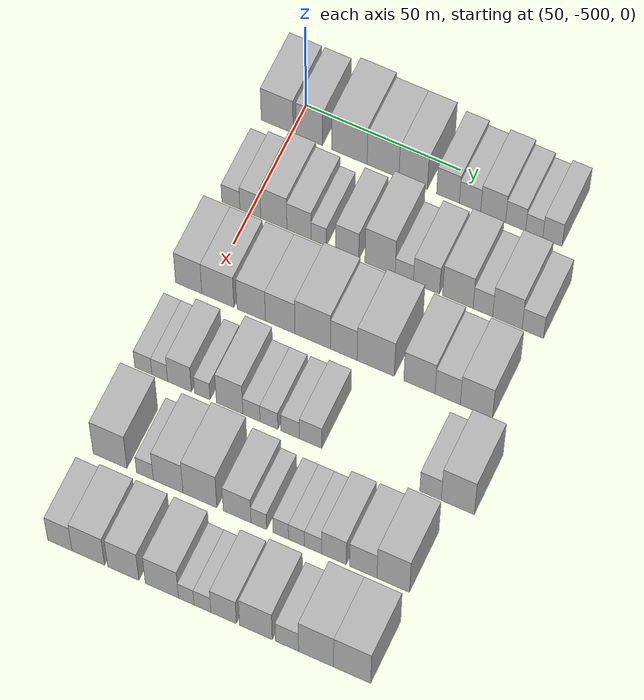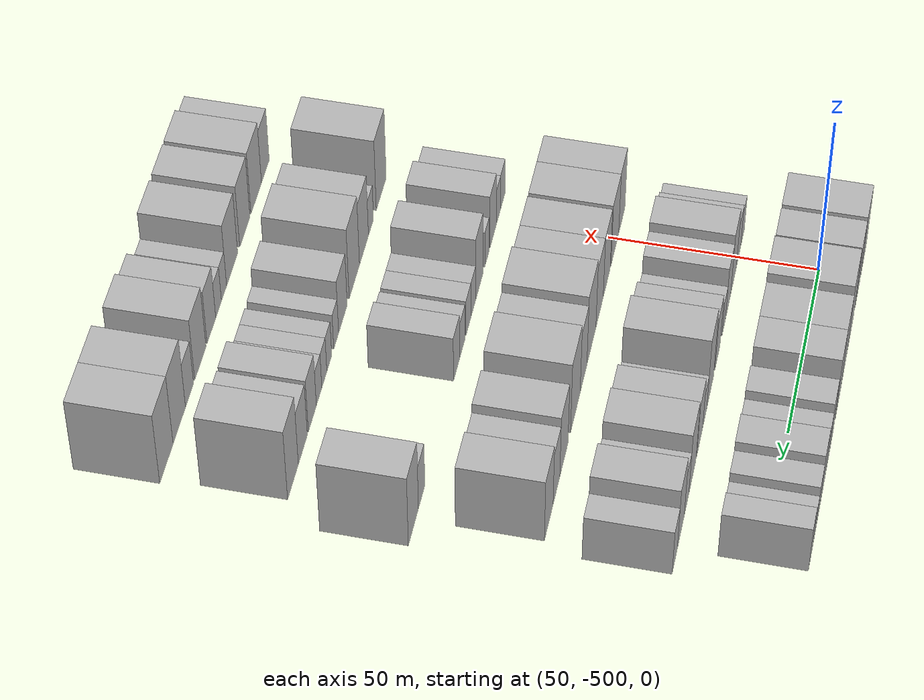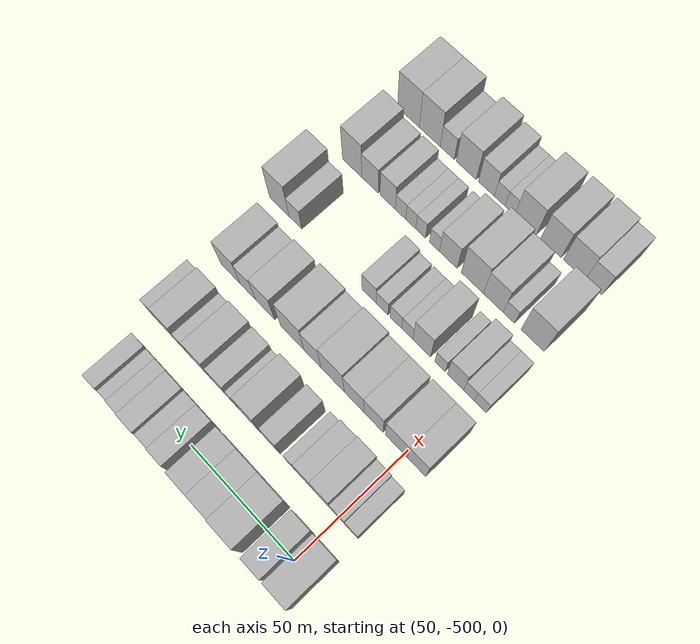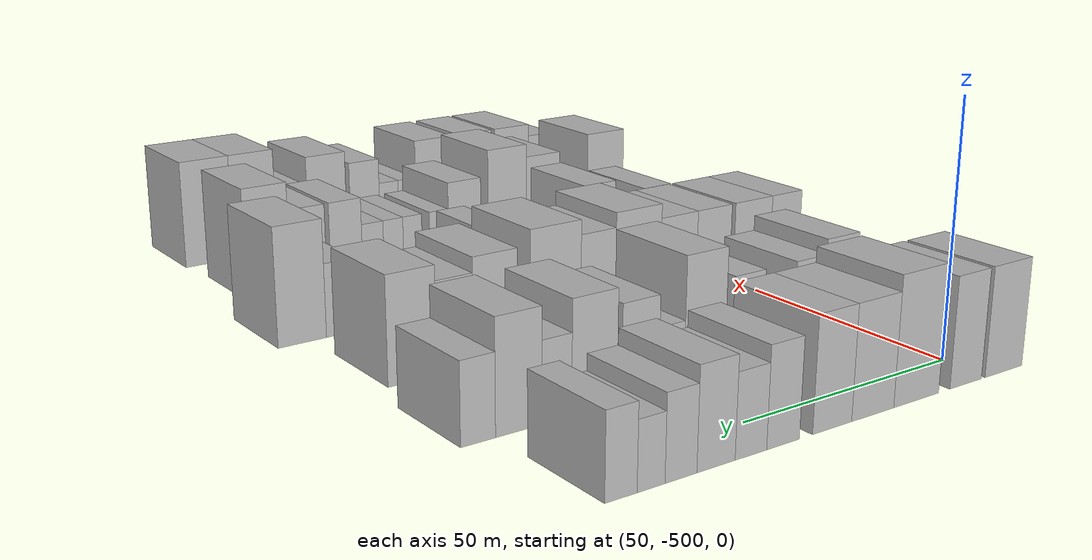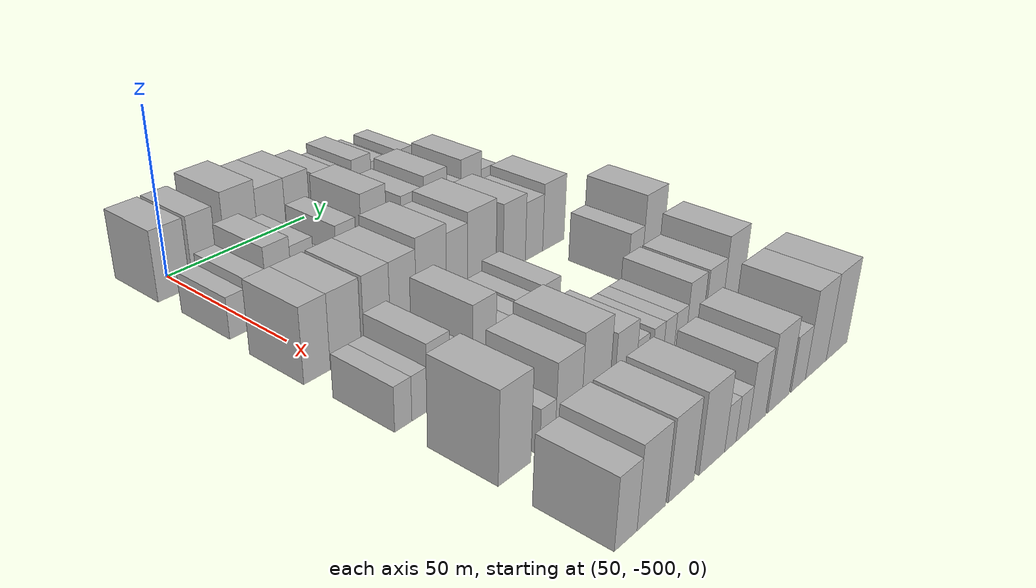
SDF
<sdf version="1.6">
 <world name="default">
  <model name="building_1">
   <static>1</static>
   <pose>50.0000 -504.7985 0 0.000000 0.000000 0.000000</pose>
   <link name="link">
    <pose>0 0 10.50 0 0 0</pose>
    <collision name="collision"><geometry><box><size>20.0000 10.4030 21.0000</size></box></geometry></collision>
    <visual name="visual">
     <cast_shadows>0</cast_shadows>
     <geometry><box><size>20.0000 10.4030 21.0000</size></box></geometry>
     <material>
      <script>
       <uri>model://HANNAS_wall/materials/scripts</uri>
       <uri>model://HANNAS_wall/materials/textures</uri>
       <name>vrc/HANNAS_wall</name>
      </script>
     </material>
    </visual>
   </link>
  </model>
  <model name="building_2">
   <static>1</static>
   <pose>50.0000 -494.3292 0 0.000000 0.000000 0.000000</pose>
   <link name="link">
    <pose>0 0 10.50 0 0 0</pose>
    <collision name="collision"><geometry><box><size>20.0000 8.5356 21.0000</size></box></geometry></collision>
    <visual name="visual">
     <cast_shadows>0</cast_shadows>
     <geometry><box><size>20.0000 8.5356 21.0000</size></box></geometry>
     <material>
      <script>
       <uri>model://HANNAS_wall/materials/scripts</uri>
       <uri>model://HANNAS_wall/materials/textures</uri>
       <name>vrc/HANNAS_wall</name>
      </script>
     </material>
    </visual>
   </link>
  </model>
  <model name="building_3">
   <static>1</static>
   <pose>50.0000 -481.3072 0 0.000000 0.000000 0.000000</pose>
   <link name="link">
    <pose>0 0 12.00 0 0 0</pose>
    <collision name="collision"><geometry><box><size>20.0000 11.5084 24.0000</size></box></geometry></collision>
    <visual name="visual">
     <cast_shadows>0</cast_shadows>
     <geometry><box><size>20.0000 11.5084 24.0000</size></box></geometry>
     <material>
      <script>
       <uri>model://HANNAS_wall/materials/scripts</uri>
       <uri>model://HANNAS_wall/materials/textures</uri>
       <name>vrc/HANNAS_wall</name>
      </script>
     </material>
    </visual>
   </link>
  </model>
  <model name="building_4">
   <static>1</static>
   <pose>50.0000 -470.4035 0 0.000000 0.000000 0.000000</pose>
   <link name="link">
    <pose>0 0 10.50 0 0 0</pose>
    <collision name="collision"><geometry><box><size>20.0000 10.2989 21.0000</size></box></geometry></collision>
    <visual name="visual">
     <cast_shadows>0</cast_shadows>
     <geometry><box><size>20.0000 10.2989 21.0000</size></box></geometry>
     <material>
      <script>
       <uri>model://HANNAS_wall/materials/scripts</uri>
       <uri>model://HANNAS_wall/materials/textures</uri>
       <name>vrc/HANNAS_wall</name>
      </script>
     </material>
    </visual>
   </link>
  </model>
  <model name="building_5">
   <static>1</static>
   <pose>50.0000 -460.6697 0 0.000000 0.000000 0.000000</pose>
   <link name="link">
    <pose>0 0 10.50 0 0 0</pose>
    <collision name="collision"><geometry><box><size>20.0000 9.1688 21.0000</size></box></geometry></collision>
    <visual name="visual">
     <cast_shadows>0</cast_shadows>
     <geometry><box><size>20.0000 9.1688 21.0000</size></box></geometry>
     <material>
      <script>
       <uri>model://HANNAS_wall/materials/scripts</uri>
       <uri>model://HANNAS_wall/materials/textures</uri>
       <name>vrc/HANNAS_wall</name>
      </script>
     </material>
    </visual>
   </link>
  </model>
  <model name="building_6">
   <static>1</static>
   <pose>50.0000 -449.4327 0 0.000000 0.000000 0.000000</pose>
   <link name="link">
    <pose>0 0 9.00 0 0 0</pose>
    <collision name="collision"><geometry><box><size>20.0000 7.3051 18.0000</size></box></geometry></collision>
    <visual name="visual">
     <cast_shadows>0</cast_shadows>
     <geometry><box><size>20.0000 7.3051 18.0000</size></box></geometry>
     <material>
      <script>
       <uri>model://HANNAS_wall/materials/scripts</uri>
       <uri>model://HANNAS_wall/materials/textures</uri>
       <name>vrc/HANNAS_wall</name>
      </script>
     </material>
    </visual>
   </link>
  </model>
  <model name="building_7">
   <static>1</static>
   <pose>50.0000 -442.3728 0 0.000000 0.000000 0.000000</pose>
   <link name="link">
    <pose>0 0 7.50 0 0 0</pose>
    <collision name="collision"><geometry><box><size>20.0000 6.8146 15.0000</size></box></geometry></collision>
    <visual name="visual">
     <cast_shadows>0</cast_shadows>
     <geometry><box><size>20.0000 6.8146 15.0000</size></box></geometry>
     <material>
      <script>
       <uri>model://HANNAS_wall/materials/scripts</uri>
       <uri>model://HANNAS_wall/materials/textures</uri>
       <name>vrc/HANNAS_wall</name>
      </script>
     </material>
    </visual>
   </link>
  </model>
  <model name="building_8">
   <static>1</static>
   <pose>50.0000 -434.9805 0 0.000000 0.000000 0.000000</pose>
   <link name="link">
    <pose>0 0 9.00 0 0 0</pose>
    <collision name="collision"><geometry><box><size>20.0000 7.9700 18.0000</size></box></geometry></collision>
    <visual name="visual">
     <cast_shadows>0</cast_shadows>
     <geometry><box><size>20.0000 7.9700 18.0000</size></box></geometry>
     <material>
      <script>
       <uri>model://HANNAS_wall/materials/scripts</uri>
       <uri>model://HANNAS_wall/materials/textures</uri>
       <name>vrc/HANNAS_wall</name>
      </script>
     </material>
    </visual>
   </link>
  </model>
  <model name="building_9">
   <static>1</static>
   <pose>50.0000 -427.7849 0 0.000000 0.000000 0.000000</pose>
   <link name="link">
    <pose>0 0 7.50 0 0 0</pose>
    <collision name="collision"><geometry><box><size>20.0000 6.4212 15.0000</size></box></geometry></collision>
    <visual name="visual">
     <cast_shadows>0</cast_shadows>
     <geometry><box><size>20.0000 6.4212 15.0000</size></box></geometry>
     <material>
      <script>
       <uri>model://HANNAS_wall/materials/scripts</uri>
       <uri>model://HANNAS_wall/materials/textures</uri>
       <name>vrc/HANNAS_wall</name>
      </script>
     </material>
    </visual>
   </link>
  </model>
  <model name="building_10">
   <static>1</static>
   <pose>50.0000 -421.8441 0 0.000000 0.000000 0.000000</pose>
   <link name="link">
    <pose>0 0 6.00 0 0 0</pose>
    <collision name="collision"><geometry><box><size>20.0000 5.4605 12.0000</size></box></geometry></collision>
    <visual name="visual">
     <cast_shadows>0</cast_shadows>
     <geometry><box><size>20.0000 5.4605 12.0000</size></box></geometry>
     <material>
      <script>
       <uri>model://HANNAS_wall/materials/scripts</uri>
       <uri>model://HANNAS_wall/materials/textures</uri>
       <name>vrc/HANNAS_wall</name>
      </script>
     </material>
    </visual>
   </link>
  </model>
  <model name="building_11">
   <static>1</static>
   <pose>50.0000 -416.0317 0 0.000000 0.000000 0.000000</pose>
   <link name="link">
    <pose>0 0 7.50 0 0 0</pose>
    <collision name="collision"><geometry><box><size>20.0000 6.1642 15.0000</size></box></geometry></collision>
    <visual name="visual">
     <cast_shadows>0</cast_shadows>
     <geometry><box><size>20.0000 6.1642 15.0000</size></box></geometry>
     <material>
      <script>
       <uri>model://HANNAS_wall/materials/scripts</uri>
       <uri>model://HANNAS_wall/materials/textures</uri>
       <name>vrc/HANNAS_wall</name>
      </script>
     </material>
    </visual>
   </link>
  </model>
  <model name="building_110">
   <static>1</static>
   <pose>79.0000 -506.0816 0 0.000000 0.000000 0.000000</pose>
   <link name="link">
    <pose>0 0 6.00 0 0 0</pose>
    <collision name="collision"><geometry><box><size>20.0000 5.8368 12.0000</size></box></geometry></collision>
    <visual name="visual">
     <cast_shadows>0</cast_shadows>
     <geometry><box><size>20.0000 5.8368 12.0000</size></box></geometry>
     <material>
      <script>
       <uri>model://HANNAS_wall/materials/scripts</uri>
       <uri>model://HANNAS_wall/materials/textures</uri>
       <name>vrc/HANNAS_wall</name>
      </script>
     </material>
    </visual>
   </link>
  </model>
  <model name="building_111">
   <static>1</static>
   <pose>79.0000 -499.7930 0 0.000000 0.000000 0.000000</pose>
   <link name="link">
    <pose>0 0 7.50 0 0 0</pose>
    <collision name="collision"><geometry><box><size>20.0000 6.7405 15.0000</size></box></geometry></collision>
    <visual name="visual">
     <cast_shadows>0</cast_shadows>
     <geometry><box><size>20.0000 6.7405 15.0000</size></box></geometry>
     <material>
      <script>
       <uri>model://HANNAS_wall/materials/scripts</uri>
       <uri>model://HANNAS_wall/materials/textures</uri>
       <name>vrc/HANNAS_wall</name>
      </script>
     </material>
    </visual>
   </link>
  </model>
  <model name="building_112">
   <static>1</static>
   <pose>79.0000 -492.1900 0 0.000000 0.000000 0.000000</pose>
   <link name="link">
    <pose>0 0 10.50 0 0 0</pose>
    <collision name="collision"><geometry><box><size>20.0000 8.4654 21.0000</size></box></geometry></collision>
    <visual name="visual">
     <cast_shadows>0</cast_shadows>
     <geometry><box><size>20.0000 8.4654 21.0000</size></box></geometry>
     <material>
      <script>
       <uri>model://HANNAS_wall/materials/scripts</uri>
       <uri>model://HANNAS_wall/materials/textures</uri>
       <name>vrc/HANNAS_wall</name>
      </script>
     </material>
    </visual>
   </link>
  </model>
  <model name="building_113">
   <static>1</static>
   <pose>79.0000 -484.0655 0 0.000000 0.000000 0.000000</pose>
   <link name="link">
    <pose>0 0 9.00 0 0 0</pose>
    <collision name="collision"><geometry><box><size>20.0000 7.7834 18.0000</size></box></geometry></collision>
    <visual name="visual">
     <cast_shadows>0</cast_shadows>
     <geometry><box><size>20.0000 7.7834 18.0000</size></box></geometry>
     <material>
      <script>
       <uri>model://HANNAS_wall/materials/scripts</uri>
       <uri>model://HANNAS_wall/materials/textures</uri>
       <name>vrc/HANNAS_wall</name>
      </script>
     </material>
    </visual>
   </link>
  </model>
  <model name="building_114">
   <static>1</static>
   <pose>79.0000 -477.6997 0 0.000000 0.000000 0.000000</pose>
   <link name="link">
    <pose>0 0 6.00 0 0 0</pose>
    <collision name="collision"><geometry><box><size>20.0000 4.9483 12.0000</size></box></geometry></collision>
    <visual name="visual">
     <cast_shadows>0</cast_shadows>
     <geometry><box><size>20.0000 4.9483 12.0000</size></box></geometry>
     <material>
      <script>
       <uri>model://HANNAS_wall/materials/scripts</uri>
       <uri>model://HANNAS_wall/materials/textures</uri>
       <name>vrc/HANNAS_wall</name>
      </script>
     </material>
    </visual>
   </link>
  </model>
  <model name="building_115">
   <static>1</static>
   <pose>79.0000 -468.5390 0 0.000000 0.000000 0.000000</pose>
   <link name="link">
    <pose>0 0 9.00 0 0 0</pose>
    <collision name="collision"><geometry><box><size>20.0000 7.3730 18.0000</size></box></geometry></collision>
    <visual name="visual">
     <cast_shadows>0</cast_shadows>
     <geometry><box><size>20.0000 7.3730 18.0000</size></box></geometry>
     <material>
      <script>
       <uri>model://HANNAS_wall/materials/scripts</uri>
       <uri>model://HANNAS_wall/materials/textures</uri>
       <name>vrc/HANNAS_wall</name>
      </script>
     </material>
    </visual>
   </link>
  </model>
  <model name="building_116">
   <static>1</static>
   <pose>79.0000 -458.0254 0 0.000000 0.000000 0.000000</pose>
   <link name="link">
    <pose>0 0 12.00 0 0 0</pose>
    <collision name="collision"><geometry><box><size>20.0000 9.6542 24.0000</size></box></geometry></collision>
    <visual name="visual">
     <cast_shadows>0</cast_shadows>
     <geometry><box><size>20.0000 9.6542 24.0000</size></box></geometry>
     <material>
      <script>
       <uri>model://HANNAS_wall/materials/scripts</uri>
       <uri>model://HANNAS_wall/materials/textures</uri>
       <name>vrc/HANNAS_wall</name>
      </script>
     </material>
    </visual>
   </link>
  </model>
  <model name="building_117">
   <static>1</static>
   <pose>79.0000 -450.2792 0 0.000000 0.000000 0.000000</pose>
   <link name="link">
    <pose>0 0 6.00 0 0 0</pose>
    <collision name="collision"><geometry><box><size>20.0000 5.8381 12.0000</size></box></geometry></collision>
    <visual name="visual">
     <cast_shadows>0</cast_shadows>
     <geometry><box><size>20.0000 5.8381 12.0000</size></box></geometry>
     <material>
      <script>
       <uri>model://HANNAS_wall/materials/scripts</uri>
       <uri>model://HANNAS_wall/materials/textures</uri>
       <name>vrc/HANNAS_wall</name>
      </script>
     </material>
    </visual>
   </link>
  </model>
  <model name="building_118">
   <static>1</static>
   <pose>79.0000 -443.2115 0 0.000000 0.000000 0.000000</pose>
   <link name="link">
    <pose>0 0 9.00 0 0 0</pose>
    <collision name="collision"><geometry><box><size>20.0000 8.2974 18.0000</size></box></geometry></collision>
    <visual name="visual">
     <cast_shadows>0</cast_shadows>
     <geometry><box><size>20.0000 8.2974 18.0000</size></box></geometry>
     <material>
      <script>
       <uri>model://HANNAS_wall/materials/scripts</uri>
       <uri>model://HANNAS_wall/materials/textures</uri>
       <name>vrc/HANNAS_wall</name>
      </script>
     </material>
    </visual>
   </link>
  </model>
  <model name="building_119">
   <static>1</static>
   <pose>79.0000 -433.2069 0 0.000000 0.000000 0.000000</pose>
   <link name="link">
    <pose>0 0 10.50 0 0 0</pose>
    <collision name="collision"><geometry><box><size>20.0000 9.7117 21.0000</size></box></geometry></collision>
    <visual name="visual">
     <cast_shadows>0</cast_shadows>
     <geometry><box><size>20.0000 9.7117 21.0000</size></box></geometry>
     <material>
      <script>
       <uri>model://HANNAS_wall/materials/scripts</uri>
       <uri>model://HANNAS_wall/materials/textures</uri>
       <name>vrc/HANNAS_wall</name>
      </script>
     </material>
    </visual>
   </link>
  </model>
  <model name="building_120">
   <static>1</static>
   <pose>79.0000 -425.2520 0 0.000000 0.000000 0.000000</pose>
   <link name="link">
    <pose>0 0 7.50 0 0 0</pose>
    <collision name="collision"><geometry><box><size>20.0000 6.1982 15.0000</size></box></geometry></collision>
    <visual name="visual">
     <cast_shadows>0</cast_shadows>
     <geometry><box><size>20.0000 6.1982 15.0000</size></box></geometry>
     <material>
      <script>
       <uri>model://HANNAS_wall/materials/scripts</uri>
       <uri>model://HANNAS_wall/materials/textures</uri>
       <name>vrc/HANNAS_wall</name>
      </script>
     </material>
    </visual>
   </link>
  </model>
  <model name="building_121">
   <static>1</static>
   <pose>79.0000 -417.5012 0 0.000000 0.000000 0.000000</pose>
   <link name="link">
    <pose>0 0 10.50 0 0 0</pose>
    <collision name="collision"><geometry><box><size>20.0000 9.3034 21.0000</size></box></geometry></collision>
    <visual name="visual">
     <cast_shadows>0</cast_shadows>
     <geometry><box><size>20.0000 9.3034 21.0000</size></box></geometry>
     <material>
      <script>
       <uri>model://HANNAS_wall/materials/scripts</uri>
       <uri>model://HANNAS_wall/materials/textures</uri>
       <name>vrc/HANNAS_wall</name>
      </script>
     </material>
    </visual>
   </link>
  </model>
  <model name="building_122">
   <static>1</static>
   <pose>79.0000 -409.4625 0 0.000000 0.000000 0.000000</pose>
   <link name="link">
    <pose>0 0 7.50 0 0 0</pose>
    <collision name="collision"><geometry><box><size>20.0000 6.7739 15.0000</size></box></geometry></collision>
    <visual name="visual">
     <cast_shadows>0</cast_shadows>
     <geometry><box><size>20.0000 6.7739 15.0000</size></box></geometry>
     <material>
      <script>
       <uri>model://HANNAS_wall/materials/scripts</uri>
       <uri>model://HANNAS_wall/materials/textures</uri>
       <name>vrc/HANNAS_wall</name>
      </script>
     </material>
    </visual>
   </link>
  </model>
  <model name="building_226">
   <static>1</static>
   <pose>108.0000 -505.7720 0 0.000000 0.000000 0.000000</pose>
   <link name="link">
    <pose>0 0 10.50 0 0 0</pose>
    <collision name="collision"><geometry><box><size>20.0000 8.4561 21.0000</size></box></geometry></collision>
    <visual name="visual">
     <cast_shadows>0</cast_shadows>
     <geometry><box><size>20.0000 8.4561 21.0000</size></box></geometry>
     <material>
      <script>
       <uri>model://HANNAS_wall/materials/scripts</uri>
       <uri>model://HANNAS_wall/materials/textures</uri>
       <name>vrc/HANNAS_wall</name>
      </script>
     </material>
    </visual>
   </link>
  </model>
  <model name="building_227">
   <static>1</static>
   <pose>108.0000 -496.3972 0 0.000000 0.000000 0.000000</pose>
   <link name="link">
    <pose>0 0 10.50 0 0 0</pose>
    <collision name="collision"><geometry><box><size>20.0000 10.2934 21.0000</size></box></geometry></collision>
    <visual name="visual">
     <cast_shadows>0</cast_shadows>
     <geometry><box><size>20.0000 10.2934 21.0000</size></box></geometry>
     <material>
      <script>
       <uri>model://HANNAS_wall/materials/scripts</uri>
       <uri>model://HANNAS_wall/materials/textures</uri>
       <name>vrc/HANNAS_wall</name>
      </script>
     </material>
    </visual>
   </link>
  </model>
  <model name="building_228">
   <static>1</static>
   <pose>108.0000 -485.7003 0 0.000000 0.000000 0.000000</pose>
   <link name="link">
    <pose>0 0 10.50 0 0 0</pose>
    <collision name="collision"><geometry><box><size>20.0000 9.1005 21.0000</size></box></geometry></collision>
    <visual name="visual">
     <cast_shadows>0</cast_shadows>
     <geometry><box><size>20.0000 9.1005 21.0000</size></box></geometry>
     <material>
      <script>
       <uri>model://HANNAS_wall/materials/scripts</uri>
       <uri>model://HANNAS_wall/materials/textures</uri>
       <name>vrc/HANNAS_wall</name>
      </script>
     </material>
    </visual>
   </link>
  </model>
  <model name="building_229">
   <static>1</static>
   <pose>108.0000 -476.4240 0 0.000000 0.000000 0.000000</pose>
   <link name="link">
    <pose>0 0 10.50 0 0 0</pose>
    <collision name="collision"><geometry><box><size>20.0000 9.4521 21.0000</size></box></geometry></collision>
    <visual name="visual">
     <cast_shadows>0</cast_shadows>
     <geometry><box><size>20.0000 9.4521 21.0000</size></box></geometry>
     <material>
      <script>
       <uri>model://HANNAS_wall/materials/scripts</uri>
       <uri>model://HANNAS_wall/materials/textures</uri>
       <name>vrc/HANNAS_wall</name>
      </script>
     </material>
    </visual>
   </link>
  </model>
  <model name="building_230">
   <static>1</static>
   <pose>108.0000 -466.0149 0 0.000000 0.000000 0.000000</pose>
   <link name="link">
    <pose>0 0 12.00 0 0 0</pose>
    <collision name="collision"><geometry><box><size>20.0000 11.3661 24.0000</size></box></geometry></collision>
    <visual name="visual">
     <cast_shadows>0</cast_shadows>
     <geometry><box><size>20.0000 11.3661 24.0000</size></box></geometry>
     <material>
      <script>
       <uri>model://HANNAS_wall/materials/scripts</uri>
       <uri>model://HANNAS_wall/materials/textures</uri>
       <name>vrc/HANNAS_wall</name>
      </script>
     </material>
    </visual>
   </link>
  </model>
  <model name="building_231">
   <static>1</static>
   <pose>108.0000 -456.1238 0 0.000000 0.000000 0.000000</pose>
   <link name="link">
    <pose>0 0 10.50 0 0 0</pose>
    <collision name="collision"><geometry><box><size>20.0000 8.4161 21.0000</size></box></geometry></collision>
    <visual name="visual">
     <cast_shadows>0</cast_shadows>
     <geometry><box><size>20.0000 8.4161 21.0000</size></box></geometry>
     <material>
      <script>
       <uri>model://HANNAS_wall/materials/scripts</uri>
       <uri>model://HANNAS_wall/materials/textures</uri>
       <name>vrc/HANNAS_wall</name>
      </script>
     </material>
    </visual>
   </link>
  </model>
  <model name="building_232">
   <static>1</static>
   <pose>108.0000 -446.0298 0 0.000000 0.000000 0.000000</pose>
   <link name="link">
    <pose>0 0 12.00 0 0 0</pose>
    <collision name="collision"><geometry><box><size>20.0000 11.7721 24.0000</size></box></geometry></collision>
    <visual name="visual">
     <cast_shadows>0</cast_shadows>
     <geometry><box><size>20.0000 11.7721 24.0000</size></box></geometry>
     <material>
      <script>
       <uri>model://HANNAS_wall/materials/scripts</uri>
       <uri>model://HANNAS_wall/materials/textures</uri>
       <name>vrc/HANNAS_wall</name>
      </script>
     </material>
    </visual>
   </link>
  </model>
  <model name="building_233">
   <static>1</static>
   <pose>108.0000 -432.2188 0 0.000000 0.000000 0.000000</pose>
   <link name="link">
    <pose>0 0 10.50 0 0 0</pose>
    <collision name="collision"><geometry><box><size>20.0000 9.8498 21.0000</size></box></geometry></collision>
    <visual name="visual">
     <cast_shadows>0</cast_shadows>
     <geometry><box><size>20.0000 9.8498 21.0000</size></box></geometry>
     <material>
      <script>
       <uri>model://HANNAS_wall/materials/scripts</uri>
       <uri>model://HANNAS_wall/materials/textures</uri>
       <name>vrc/HANNAS_wall</name>
      </script>
     </material>
    </visual>
   </link>
  </model>
  <model name="building_234">
   <static>1</static>
   <pose>108.0000 -423.3215 0 0.000000 0.000000 0.000000</pose>
   <link name="link">
    <pose>0 0 9.00 0 0 0</pose>
    <collision name="collision"><geometry><box><size>20.0000 7.9449 18.0000</size></box></geometry></collision>
    <visual name="visual">
     <cast_shadows>0</cast_shadows>
     <geometry><box><size>20.0000 7.9449 18.0000</size></box></geometry>
     <material>
      <script>
       <uri>model://HANNAS_wall/materials/scripts</uri>
       <uri>model://HANNAS_wall/materials/textures</uri>
       <name>vrc/HANNAS_wall</name>
      </script>
     </material>
    </visual>
   </link>
  </model>
  <model name="building_235">
   <static>1</static>
   <pose>108.0000 -414.3053 0 0.000000 0.000000 0.000000</pose>
   <link name="link">
    <pose>0 0 10.50 0 0 0</pose>
    <collision name="collision"><geometry><box><size>20.0000 10.0875 21.0000</size></box></geometry></collision>
    <visual name="visual">
     <cast_shadows>0</cast_shadows>
     <geometry><box><size>20.0000 10.0875 21.0000</size></box></geometry>
     <material>
      <script>
       <uri>model://HANNAS_wall/materials/scripts</uri>
       <uri>model://HANNAS_wall/materials/textures</uri>
       <name>vrc/HANNAS_wall</name>
      </script>
     </material>
    </visual>
   </link>
  </model>
  <model name="building_336">
   <static>1</static>
   <pose>137.0000 -506.2590 0 0.000000 0.000000 0.000000</pose>
   <link name="link">
    <pose>0 0 6.00 0 0 0</pose>
    <collision name="collision"><geometry><box><size>20.0000 5.4819 12.0000</size></box></geometry></collision>
    <visual name="visual">
     <cast_shadows>0</cast_shadows>
     <geometry><box><size>20.0000 5.4819 12.0000</size></box></geometry>
     <material>
      <script>
       <uri>model://HANNAS_wall/materials/scripts</uri>
       <uri>model://HANNAS_wall/materials/textures</uri>
       <name>vrc/HANNAS_wall</name>
      </script>
     </material>
    </visual>
   </link>
  </model>
  <model name="building_337">
   <static>1</static>
   <pose>137.0000 -501.0109 0 0.000000 0.000000 0.000000</pose>
   <link name="link">
    <pose>0 0 6.00 0 0 0</pose>
    <collision name="collision"><geometry><box><size>20.0000 5.0144 12.0000</size></box></geometry></collision>
    <visual name="visual">
     <cast_shadows>0</cast_shadows>
     <geometry><box><size>20.0000 5.0144 12.0000</size></box></geometry>
     <material>
      <script>
       <uri>model://HANNAS_wall/materials/scripts</uri>
       <uri>model://HANNAS_wall/materials/textures</uri>
       <name>vrc/HANNAS_wall</name>
      </script>
     </material>
    </visual>
   </link>
  </model>
  <model name="building_338">
   <static>1</static>
   <pose>137.0000 -494.6930 0 0.000000 0.000000 0.000000</pose>
   <link name="link">
    <pose>0 0 9.00 0 0 0</pose>
    <collision name="collision"><geometry><box><size>20.0000 7.6212 18.0000</size></box></geometry></collision>
    <visual name="visual">
     <cast_shadows>0</cast_shadows>
     <geometry><box><size>20.0000 7.6212 18.0000</size></box></geometry>
     <material>
      <script>
       <uri>model://HANNAS_wall/materials/scripts</uri>
       <uri>model://HANNAS_wall/materials/textures</uri>
       <name>vrc/HANNAS_wall</name>
      </script>
     </material>
    </visual>
   </link>
  </model>
  <model name="building_339">
   <static>1</static>
   <pose>137.0000 -487.4168 0 0.000000 0.000000 0.000000</pose>
   <link name="link">
    <pose>0 0 6.00 0 0 0</pose>
    <collision name="collision"><geometry><box><size>20.0000 4.9313 12.0000</size></box></geometry></collision>
    <visual name="visual">
     <cast_shadows>0</cast_shadows>
     <geometry><box><size>20.0000 4.9313 12.0000</size></box></geometry>
     <material>
      <script>
       <uri>model://HANNAS_wall/materials/scripts</uri>
       <uri>model://HANNAS_wall/materials/textures</uri>
       <name>vrc/HANNAS_wall</name>
      </script>
     </material>
    </visual>
   </link>
  </model>
  <model name="building_340">
   <static>1</static>
   <pose>137.0000 -478.7435 0 0.000000 0.000000 0.000000</pose>
   <link name="link">
    <pose>0 0 10.50 0 0 0</pose>
    <collision name="collision"><geometry><box><size>20.0000 8.4153 21.0000</size></box></geometry></collision>
    <visual name="visual">
     <cast_shadows>0</cast_shadows>
     <geometry><box><size>20.0000 8.4153 21.0000</size></box></geometry>
     <material>
      <script>
       <uri>model://HANNAS_wall/materials/scripts</uri>
       <uri>model://HANNAS_wall/materials/textures</uri>
       <name>vrc/HANNAS_wall</name>
      </script>
     </material>
    </visual>
   </link>
  </model>
  <model name="building_341">
   <static>1</static>
   <pose>137.0000 -471.8167 0 0.000000 0.000000 0.000000</pose>
   <link name="link">
    <pose>0 0 6.00 0 0 0</pose>
    <collision name="collision"><geometry><box><size>20.0000 5.4383 12.0000</size></box></geometry></collision>
    <visual name="visual">
     <cast_shadows>0</cast_shadows>
     <geometry><box><size>20.0000 5.4383 12.0000</size></box></geometry>
     <material>
      <script>
       <uri>model://HANNAS_wall/materials/scripts</uri>
       <uri>model://HANNAS_wall/materials/textures</uri>
       <name>vrc/HANNAS_wall</name>
      </script>
     </material>
    </visual>
   </link>
  </model>
  <model name="building_342">
   <static>1</static>
   <pose>137.0000 -466.2782 0 0.000000 0.000000 0.000000</pose>
   <link name="link">
    <pose>0 0 6.00 0 0 0</pose>
    <collision name="collision"><geometry><box><size>20.0000 5.6386 12.0000</size></box></geometry></collision>
    <visual name="visual">
     <cast_shadows>0</cast_shadows>
     <geometry><box><size>20.0000 5.6386 12.0000</size></box></geometry>
     <material>
      <script>
       <uri>model://HANNAS_wall/materials/scripts</uri>
       <uri>model://HANNAS_wall/materials/textures</uri>
       <name>vrc/HANNAS_wall</name>
      </script>
     </material>
    </visual>
   </link>
  </model>
  <model name="building_343">
   <static>1</static>
   <pose>137.0000 -459.5559 0 0.000000 0.000000 0.000000</pose>
   <link name="link">
    <pose>0 0 6.00 0 0 0</pose>
    <collision name="collision"><geometry><box><size>20.0000 5.8059 12.0000</size></box></geometry></collision>
    <visual name="visual">
     <cast_shadows>0</cast_shadows>
     <geometry><box><size>20.0000 5.8059 12.0000</size></box></geometry>
     <material>
      <script>
       <uri>model://HANNAS_wall/materials/scripts</uri>
       <uri>model://HANNAS_wall/materials/textures</uri>
       <name>vrc/HANNAS_wall</name>
      </script>
     </material>
    </visual>
   </link>
  </model>
  <model name="building_344">
   <static>1</static>
   <pose>137.0000 -453.1309 0 0.000000 0.000000 0.000000</pose>
   <link name="link">
    <pose>0 0 7.50 0 0 0</pose>
    <collision name="collision"><geometry><box><size>20.0000 7.0442 15.0000</size></box></geometry></collision>
    <visual name="visual">
     <cast_shadows>0</cast_shadows>
     <geometry><box><size>20.0000 7.0442 15.0000</size></box></geometry>
     <material>
      <script>
       <uri>model://HANNAS_wall/materials/scripts</uri>
       <uri>model://HANNAS_wall/materials/textures</uri>
       <name>vrc/HANNAS_wall</name>
      </script>
     </material>
    </visual>
   </link>
  </model>
  <model name="building_345">
   <static>1</static>
   <pose>137.0000 -415.5318 0 0.000000 0.000000 0.000000</pose>
   <link name="link">
    <pose>0 0 7.50 0 0 0</pose>
    <collision name="collision"><geometry><box><size>20.0000 6.7180 15.0000</size></box></geometry></collision>
    <visual name="visual">
     <cast_shadows>0</cast_shadows>
     <geometry><box><size>20.0000 6.7180 15.0000</size></box></geometry>
     <material>
      <script>
       <uri>model://HANNAS_wall/materials/scripts</uri>
       <uri>model://HANNAS_wall/materials/textures</uri>
       <name>vrc/HANNAS_wall</name>
      </script>
     </material>
    </visual>
   </link>
  </model>
  <model name="building_346">
   <static>1</static>
   <pose>137.0000 -407.0289 0 0.000000 0.000000 0.000000</pose>
   <link name="link">
    <pose>0 0 12.00 0 0 0</pose>
    <collision name="collision"><geometry><box><size>20.0000 10.2879 24.0000</size></box></geometry></collision>
    <visual name="visual">
     <cast_shadows>0</cast_shadows>
     <geometry><box><size>20.0000 10.2879 24.0000</size></box></geometry>
     <material>
      <script>
       <uri>model://HANNAS_wall/materials/scripts</uri>
       <uri>model://HANNAS_wall/materials/textures</uri>
       <name>vrc/HANNAS_wall</name>
      </script>
     </material>
    </visual>
   </link>
  </model>
  <model name="building_443">
   <static>1</static>
   <pose>166.0000 -502.6297 0 0.000000 0.000000 0.000000</pose>
   <link name="link">
    <pose>0 0 12.00 0 0 0</pose>
    <collision name="collision"><geometry><box><size>20.0000 10.7406 24.0000</size></box></geometry></collision>
    <visual name="visual">
     <cast_shadows>0</cast_shadows>
     <geometry><box><size>20.0000 10.7406 24.0000</size></box></geometry>
     <material>
      <script>
       <uri>model://HANNAS_wall/materials/scripts</uri>
       <uri>model://HANNAS_wall/materials/textures</uri>
       <name>vrc/HANNAS_wall</name>
      </script>
     </material>
    </visual>
   </link>
  </model>
  <model name="building_444">
   <static>1</static>
   <pose>166.0000 -491.6010 0 0.000000 0.000000 0.000000</pose>
   <link name="link">
    <pose>0 0 6.00 0 0 0</pose>
    <collision name="collision"><geometry><box><size>20.0000 5.3168 12.0000</size></box></geometry></collision>
    <visual name="visual">
     <cast_shadows>0</cast_shadows>
     <geometry><box><size>20.0000 5.3168 12.0000</size></box></geometry>
     <material>
      <script>
       <uri>model://HANNAS_wall/materials/scripts</uri>
       <uri>model://HANNAS_wall/materials/textures</uri>
       <name>vrc/HANNAS_wall</name>
      </script>
     </material>
    </visual>
   </link>
  </model>
  <model name="building_445">
   <static>1</static>
   <pose>166.0000 -484.2429 0 0.000000 0.000000 0.000000</pose>
   <link name="link">
    <pose>0 0 10.50 0 0 0</pose>
    <collision name="collision"><geometry><box><size>20.0000 9.3994 21.0000</size></box></geometry></collision>
    <visual name="visual">
     <cast_shadows>0</cast_shadows>
     <geometry><box><size>20.0000 9.3994 21.0000</size></box></geometry>
     <material>
      <script>
       <uri>model://HANNAS_wall/materials/scripts</uri>
       <uri>model://HANNAS_wall/materials/textures</uri>
       <name>vrc/HANNAS_wall</name>
      </script>
     </material>
    </visual>
   </link>
  </model>
  <model name="building_446">
   <static>1</static>
   <pose>166.0000 -474.2143 0 0.000000 0.000000 0.000000</pose>
   <link name="link">
    <pose>0 0 12.00 0 0 0</pose>
    <collision name="collision"><geometry><box><size>20.0000 10.6578 24.0000</size></box></geometry></collision>
    <visual name="visual">
     <cast_shadows>0</cast_shadows>
     <geometry><box><size>20.0000 10.6578 24.0000</size></box></geometry>
     <material>
      <script>
       <uri>model://HANNAS_wall/materials/scripts</uri>
       <uri>model://HANNAS_wall/materials/textures</uri>
       <name>vrc/HANNAS_wall</name>
      </script>
     </material>
    </visual>
   </link>
  </model>
  <model name="building_447">
   <static>1</static>
   <pose>166.0000 -462.5323 0 0.000000 0.000000 0.000000</pose>
   <link name="link">
    <pose>0 0 9.00 0 0 0</pose>
    <collision name="collision"><geometry><box><size>20.0000 8.7061 18.0000</size></box></geometry></collision>
    <visual name="visual">
     <cast_shadows>0</cast_shadows>
     <geometry><box><size>20.0000 8.7061 18.0000</size></box></geometry>
     <material>
      <script>
       <uri>model://HANNAS_wall/materials/scripts</uri>
       <uri>model://HANNAS_wall/materials/textures</uri>
       <name>vrc/HANNAS_wall</name>
      </script>
     </material>
    </visual>
   </link>
  </model>
  <model name="building_448">
   <static>1</static>
   <pose>166.0000 -455.7201 0 0.000000 0.000000 0.000000</pose>
   <link name="link">
    <pose>0 0 6.00 0 0 0</pose>
    <collision name="collision"><geometry><box><size>20.0000 4.9183 12.0000</size></box></geometry></collision>
    <visual name="visual">
     <cast_shadows>0</cast_shadows>
     <geometry><box><size>20.0000 4.9183 12.0000</size></box></geometry>
     <material>
      <script>
       <uri>model://HANNAS_wall/materials/scripts</uri>
       <uri>model://HANNAS_wall/materials/textures</uri>
       <name>vrc/HANNAS_wall</name>
      </script>
     </material>
    </visual>
   </link>
  </model>
  <model name="building_449">
   <static>1</static>
   <pose>166.0000 -448.8503 0 0.000000 0.000000 0.000000</pose>
   <link name="link">
    <pose>0 0 6.00 0 0 0</pose>
    <collision name="collision"><geometry><box><size>20.0000 4.8213 12.0000</size></box></geometry></collision>
    <visual name="visual">
     <cast_shadows>0</cast_shadows>
     <geometry><box><size>20.0000 4.8213 12.0000</size></box></geometry>
     <material>
      <script>
       <uri>model://HANNAS_wall/materials/scripts</uri>
       <uri>model://HANNAS_wall/materials/textures</uri>
       <name>vrc/HANNAS_wall</name>
      </script>
     </material>
    </visual>
   </link>
  </model>
  <model name="building_450">
   <static>1</static>
   <pose>166.0000 -443.9521 0 0.000000 0.000000 0.000000</pose>
   <link name="link">
    <pose>0 0 6.00 0 0 0</pose>
    <collision name="collision"><geometry><box><size>20.0000 4.9752 12.0000</size></box></geometry></collision>
    <visual name="visual">
     <cast_shadows>0</cast_shadows>
     <geometry><box><size>20.0000 4.9752 12.0000</size></box></geometry>
     <material>
      <script>
       <uri>model://HANNAS_wall/materials/scripts</uri>
       <uri>model://HANNAS_wall/materials/textures</uri>
       <name>vrc/HANNAS_wall</name>
      </script>
     </material>
    </visual>
   </link>
  </model>
  <model name="building_451">
   <static>1</static>
   <pose>166.0000 -438.8131 0 0.000000 0.000000 0.000000</pose>
   <link name="link">
    <pose>0 0 6.00 0 0 0</pose>
    <collision name="collision"><geometry><box><size>20.0000 5.3027 12.0000</size></box></geometry></collision>
    <visual name="visual">
     <cast_shadows>0</cast_shadows>
     <geometry><box><size>20.0000 5.3027 12.0000</size></box></geometry>
     <material>
      <script>
       <uri>model://HANNAS_wall/materials/scripts</uri>
       <uri>model://HANNAS_wall/materials/textures</uri>
       <name>vrc/HANNAS_wall</name>
      </script>
     </material>
    </visual>
   </link>
  </model>
  <model name="building_452">
   <static>1</static>
   <pose>166.0000 -432.2993 0 0.000000 0.000000 0.000000</pose>
   <link name="link">
    <pose>0 0 9.00 0 0 0</pose>
    <collision name="collision"><geometry><box><size>20.0000 7.7249 18.0000</size></box></geometry></collision>
    <visual name="visual">
     <cast_shadows>0</cast_shadows>
     <geometry><box><size>20.0000 7.7249 18.0000</size></box></geometry>
     <material>
      <script>
       <uri>model://HANNAS_wall/materials/scripts</uri>
       <uri>model://HANNAS_wall/materials/textures</uri>
       <name>vrc/HANNAS_wall</name>
      </script>
     </material>
    </visual>
   </link>
  </model>
  <model name="building_453">
   <static>1</static>
   <pose>166.0000 -423.1795 0 0.000000 0.000000 0.000000</pose>
   <link name="link">
    <pose>0 0 9.00 0 0 0</pose>
    <collision name="collision"><geometry><box><size>20.0000 8.5146 18.0000</size></box></geometry></collision>
    <visual name="visual">
     <cast_shadows>0</cast_shadows>
     <geometry><box><size>20.0000 8.5146 18.0000</size></box></geometry>
     <material>
      <script>
       <uri>model://HANNAS_wall/materials/scripts</uri>
       <uri>model://HANNAS_wall/materials/textures</uri>
       <name>vrc/HANNAS_wall</name>
      </script>
     </material>
    </visual>
   </link>
  </model>
  <model name="building_454">
   <static>1</static>
   <pose>166.0000 -413.8817 0 0.000000 0.000000 0.000000</pose>
   <link name="link">
    <pose>0 0 12.00 0 0 0</pose>
    <collision name="collision"><geometry><box><size>20.0000 10.0810 24.0000</size></box></geometry></collision>
    <visual name="visual">
     <cast_shadows>0</cast_shadows>
     <geometry><box><size>20.0000 10.0810 24.0000</size></box></geometry>
     <material>
      <script>
       <uri>model://HANNAS_wall/materials/scripts</uri>
       <uri>model://HANNAS_wall/materials/textures</uri>
       <name>vrc/HANNAS_wall</name>
      </script>
     </material>
    </visual>
   </link>
  </model>
  <model name="building_561">
   <static>1</static>
   <pose>195.0000 -504.1629 0 0.000000 0.000000 0.000000</pose>
   <link name="link">
    <pose>0 0 9.00 0 0 0</pose>
    <collision name="collision"><geometry><box><size>20.0000 7.6742 18.0000</size></box></geometry></collision>
    <visual name="visual">
     <cast_shadows>0</cast_shadows>
     <geometry><box><size>20.0000 7.6742 18.0000</size></box></geometry>
     <material>
      <script>
       <uri>model://HANNAS_wall/materials/scripts</uri>
       <uri>model://HANNAS_wall/materials/textures</uri>
       <name>vrc/HANNAS_wall</name>
      </script>
     </material>
    </visual>
   </link>
  </model>
  <model name="building_562">
   <static>1</static>
   <pose>195.0000 -495.2016 0 0.000000 0.000000 0.000000</pose>
   <link name="link">
    <pose>0 0 10.50 0 0 0</pose>
    <collision name="collision"><geometry><box><size>20.0000 10.2484 21.0000</size></box></geometry></collision>
    <visual name="visual">
     <cast_shadows>0</cast_shadows>
     <geometry><box><size>20.0000 10.2484 21.0000</size></box></geometry>
     <material>
      <script>
       <uri>model://HANNAS_wall/materials/scripts</uri>
       <uri>model://HANNAS_wall/materials/textures</uri>
       <name>vrc/HANNAS_wall</name>
      </script>
     </material>
    </visual>
   </link>
  </model>
  <model name="building_563">
   <static>1</static>
   <pose>195.0000 -484.1928 0 0.000000 0.000000 0.000000</pose>
   <link name="link">
    <pose>0 0 10.50 0 0 0</pose>
    <collision name="collision"><geometry><box><size>20.0000 9.7691 21.0000</size></box></geometry></collision>
    <visual name="visual">
     <cast_shadows>0</cast_shadows>
     <geometry><box><size>20.0000 9.7691 21.0000</size></box></geometry>
     <material>
      <script>
       <uri>model://HANNAS_wall/materials/scripts</uri>
       <uri>model://HANNAS_wall/materials/textures</uri>
       <name>vrc/HANNAS_wall</name>
      </script>
     </material>
    </visual>
   </link>
  </model>
  <model name="building_564">
   <static>1</static>
   <pose>195.0000 -472.1138 0 0.000000 0.000000 0.000000</pose>
   <link name="link">
    <pose>0 0 10.50 0 0 0</pose>
    <collision name="collision"><geometry><box><size>20.0000 10.3889 21.0000</size></box></geometry></collision>
    <visual name="visual">
     <cast_shadows>0</cast_shadows>
     <geometry><box><size>20.0000 10.3889 21.0000</size></box></geometry>
     <material>
      <script>
       <uri>model://HANNAS_wall/materials/scripts</uri>
       <uri>model://HANNAS_wall/materials/textures</uri>
       <name>vrc/HANNAS_wall</name>
      </script>
     </material>
    </visual>
   </link>
  </model>
  <model name="building_565">
   <static>1</static>
   <pose>195.0000 -464.5005 0 0.000000 0.000000 0.000000</pose>
   <link name="link">
    <pose>0 0 6.00 0 0 0</pose>
    <collision name="collision"><geometry><box><size>20.0000 4.8377 12.0000</size></box></geometry></collision>
    <visual name="visual">
     <cast_shadows>0</cast_shadows>
     <geometry><box><size>20.0000 4.8377 12.0000</size></box></geometry>
     <material>
      <script>
       <uri>model://HANNAS_wall/materials/scripts</uri>
       <uri>model://HANNAS_wall/materials/textures</uri>
       <name>vrc/HANNAS_wall</name>
      </script>
     </material>
    </visual>
   </link>
  </model>
  <model name="building_566">
   <static>1</static>
   <pose>195.0000 -459.4624 0 0.000000 0.000000 0.000000</pose>
   <link name="link">
    <pose>0 0 6.00 0 0 0</pose>
    <collision name="collision"><geometry><box><size>20.0000 5.2386 12.0000</size></box></geometry></collision>
    <visual name="visual">
     <cast_shadows>0</cast_shadows>
     <geometry><box><size>20.0000 5.2386 12.0000</size></box></geometry>
     <material>
      <script>
       <uri>model://HANNAS_wall/materials/scripts</uri>
       <uri>model://HANNAS_wall/materials/textures</uri>
       <name>vrc/HANNAS_wall</name>
      </script>
     </material>
    </visual>
   </link>
  </model>
  <model name="building_567">
   <static>1</static>
   <pose>195.0000 -452.8806 0 0.000000 0.000000 0.000000</pose>
   <link name="link">
    <pose>0 0 9.00 0 0 0</pose>
    <collision name="collision"><geometry><box><size>20.0000 7.9250 18.0000</size></box></geometry></collision>
    <visual name="visual">
     <cast_shadows>0</cast_shadows>
     <geometry><box><size>20.0000 7.9250 18.0000</size></box></geometry>
     <material>
      <script>
       <uri>model://HANNAS_wall/materials/scripts</uri>
       <uri>model://HANNAS_wall/materials/textures</uri>
       <name>vrc/HANNAS_wall</name>
      </script>
     </material>
    </visual>
   </link>
  </model>
  <model name="building_568">
   <static>1</static>
   <pose>195.0000 -442.8631 0 0.000000 0.000000 0.000000</pose>
   <link name="link">
    <pose>0 0 10.50 0 0 0</pose>
    <collision name="collision"><geometry><box><size>20.0000 10.1098 21.0000</size></box></geometry></collision>
    <visual name="visual">
     <cast_shadows>0</cast_shadows>
     <geometry><box><size>20.0000 10.1098 21.0000</size></box></geometry>
     <material>
      <script>
       <uri>model://HANNAS_wall/materials/scripts</uri>
       <uri>model://HANNAS_wall/materials/textures</uri>
       <name>vrc/HANNAS_wall</name>
      </script>
     </material>
    </visual>
   </link>
  </model>
  <model name="building_569">
   <static>1</static>
   <pose>195.0000 -433.2495 0 0.000000 0.000000 0.000000</pose>
   <link name="link">
    <pose>0 0 7.50 0 0 0</pose>
    <collision name="collision"><geometry><box><size>20.0000 7.1174 15.0000</size></box></geometry></collision>
    <visual name="visual">
     <cast_shadows>0</cast_shadows>
     <geometry><box><size>20.0000 7.1174 15.0000</size></box></geometry>
     <material>
      <script>
       <uri>model://HANNAS_wall/materials/scripts</uri>
       <uri>model://HANNAS_wall/materials/textures</uri>
       <name>vrc/HANNAS_wall</name>
      </script>
     </material>
    </visual>
   </link>
  </model>
  <model name="building_570">
   <static>1</static>
   <pose>195.0000 -424.2886 0 0.000000 0.000000 0.000000</pose>
   <link name="link">
    <pose>0 0 12.00 0 0 0</pose>
    <collision name="collision"><geometry><box><size>20.0000 10.8044 24.0000</size></box></geometry></collision>
    <visual name="visual">
     <cast_shadows>0</cast_shadows>
     <geometry><box><size>20.0000 10.8044 24.0000</size></box></geometry>
     <material>
      <script>
       <uri>model://HANNAS_wall/materials/scripts</uri>
       <uri>model://HANNAS_wall/materials/textures</uri>
       <name>vrc/HANNAS_wall</name>
      </script>
     </material>
    </visual>
   </link>
  </model>
  <model name="building_571">
   <static>1</static>
   <pose>195.0000 -413.1684 0 0.000000 0.000000 0.000000</pose>
   <link name="link">
    <pose>0 0 12.00 0 0 0</pose>
    <collision name="collision"><geometry><box><size>20.0000 11.4360 24.0000</size></box></geometry></collision>
    <visual name="visual">
     <cast_shadows>0</cast_shadows>
     <geometry><box><size>20.0000 11.4360 24.0000</size></box></geometry>
     <material>
      <script>
       <uri>model://HANNAS_wall/materials/scripts</uri>
       <uri>model://HANNAS_wall/materials/textures</uri>
       <name>vrc/HANNAS_wall</name>
      </script>
     </material>
    </visual>
   </link>
  </model>
 </world>
</sdf>
